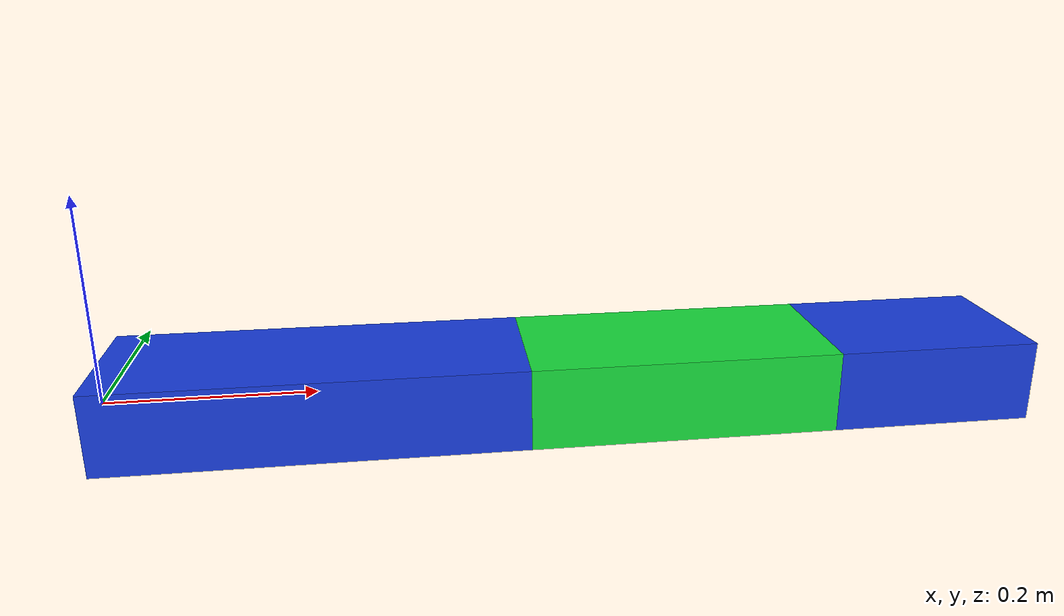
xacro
<?xml version="1.0"?>
<robot xmlns:xacro="http://www.ros.org/wiki/xacro" name="arm_3dof">

    <xacro:include filename="$(find manipulator_3dof_description)/urdf/materials.urdf.xacro"/>
    <xacro:include filename="$(find manipulator_3dof_description)/urdf/inertial_macros.xacro"/>

    <xacro:property name="width" value="0.15" />
    <xacro:property name="length_link1" value="0.4" />
    <xacro:property name="length_link2" value="0.3" />
    <xacro:property name="length_link3" value="0.2" />
    <xacro:property name="height" value="0.08" />

    <link name="base_link"/>

    <joint name="joint1" type="revolute">
        <axis xyz="0 0 1"/>
        <origin xyz="0 0 0" rpy="0 0 0"/>
        <limit effort="1000.0" lower="${-pi}" upper="${pi}" velocity="0.5"/>
        <parent link="base_link"/>
        <child link="link1"/>
    </joint>

    <link name="link1">
        <visual>
            <origin xyz="${length_link1/2} 0 0" rpy="0 0 0"/>
            <geometry>
                <box size="${length_link1} ${width} ${height}"/>
            </geometry>
            <material name="blue"/>
        </visual>

        <collision>
            <origin xyz="${length_link1/2} 0 0" rpy="0 0 0"/>
            <geometry>
                <box size="${length_link1} ${width} ${height}"/>
            </geometry>
        </collision>

        <xacro:inertial_box mass="0.5" x="${length_link1}" y="${width}" z="${height}">
            <origin xyz="${length_link1/2} 0 0" rpy="0 0 0"/>
        </xacro:inertial_box>
    </link>

    <joint name="joint2" type="revolute">
        <axis xyz="0 0 1"/>
        <origin xyz="${length_link1} 0 0" rpy="0 0 0"/>
        <limit effort="1000.0" lower="${-pi}" upper="${pi}" velocity="0.5"/>
        <parent link="link1"/>
        <child link="link2"/>
    </joint>

    <link name="link2">
        <visual>
            <origin xyz="${length_link2/2} 0 0" rpy="0 0 0"/>
            <geometry>
                <box size="${length_link2} ${width} ${height}"/>
            </geometry>
            <material name="green"/>
        </visual>

        <collision>
            <origin xyz="${length_link2/2} 0 0" rpy="0 0 0"/>
            <geometry>
                <box size="${length_link2} ${width} ${height}"/>
            </geometry>
        </collision>

        <xacro:inertial_box mass="0.5" x="${length_link2}" y="${width}" z="${height}">
            <origin xyz="${length_link2/2} 0 0" rpy="0 0 0"/>
        </xacro:inertial_box>
    </link>

    <joint name="joint3" type="revolute">
        <axis xyz="0 0 1"/>
        <origin xyz="${length_link2} 0 0" rpy="0 0 0"/>
        <limit effort="1000.0" lower="${-pi}" upper="${pi}" velocity="0.5"/>
        <parent link="link2"/>
        <child link="link3"/>
    </joint>

    <link name="link3">
        <visual>
            <origin xyz="${length_link3/2} 0 0" rpy="0 0 0"/>
            <geometry>
                <box size="${length_link3} ${width} ${height}"/>
            </geometry>
            <material name="blue"/>
        </visual>

        <collision>
            <origin xyz="${length_link3/2} 0 0" rpy="0 0 0"/>
            <geometry>
                <box size="${length_link3} ${width} ${height}"/>
            </geometry>
        </collision>

        <xacro:inertial_box mass="0.5" x="${length_link3}" y="${width}" z="${height}">
            <origin xyz="${length_link3/2} 0 0" rpy="0 0 0"/>
        </xacro:inertial_box>
    </link>

    <joint name="to_end_effector" type="fixed">
        <origin xyz="${length_link3} 0 0" rpy="0 0 0"/>
        <parent link="link3"/>
        <child link="end_effector"/>
    </joint>

    <link name="end_effector"/>
</robot>

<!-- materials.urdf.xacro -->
<robot xmlns:xacro="http://www.ros.org/wiki/xacro">
    <material name="white">
        <color rgba="1.0 1.0 1.0 1.0"/>
    </material>

    <material name="grey">
        <color rgba="0.5 0.5 0.5 1.0"/>
    </material>

    <material name="blue">
        <color rgba="0.1 0.25 0.9 1.0"/>
    </material>

    <material name="green">
        <color rgba="0.1 0.9 0.25 1.0"/>
    </material>
</robot>

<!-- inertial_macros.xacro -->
<robot xmlns:xacro="http://www.ros.org/wiki/xacro" >
    <!-- SOURCE https://github.com/joshnewans/articubot_one/blob/d5aa5e9bc9039073c0d8fd7fe426e170be79c087/description/inertial_macros.xacro -->

    <!-- Specify some standard inertial calculations https://en.wikipedia.org/wiki/List_of_moments_of_inertia -->
    <!-- These make use of xacro's mathematical functionality -->

    <xacro:macro name="inertial_sphere" params="mass radius *origin">
        <inertial>
            <xacro:insert_block name="origin"/>
            <mass value="${mass}" />
            <inertia ixx="${(2/5) * mass * (radius*radius)}" ixy="0.0" ixz="0.0"
                    iyy="${(2/5) * mass * (radius*radius)}" iyz="0.0"
                    izz="${(2/5) * mass * (radius*radius)}" />
        </inertial>
    </xacro:macro>

    <xacro:macro name="inertial_box" params="mass x y z *origin">
        <inertial>
            <xacro:insert_block name="origin"/>
            <mass value="${mass}" />
            <inertia ixx="${(1/12) * mass * (y*y+z*z)}" ixy="0.0" ixz="0.0"
                    iyy="${(1/12) * mass * (x*x+z*z)}" iyz="0.0"
                    izz="${(1/12) * mass * (x*x+y*y)}" />
        </inertial>
    </xacro:macro>

    <xacro:macro name="inertial_cylinder" params="mass length radius *origin">
        <inertial>
            <xacro:insert_block name="origin"/>
            <mass value="${mass}" />
            <inertia ixx="${(1/12) * mass * (3*radius*radius + length*length)}" ixy="0.0" ixz="0.0"
                    iyy="${(1/12) * mass * (3*radius*radius + length*length)}" iyz="0.0"
                    izz="${(1/2) * mass * (radius*radius)}" />
        </inertial>
    </xacro:macro>

</robot>
